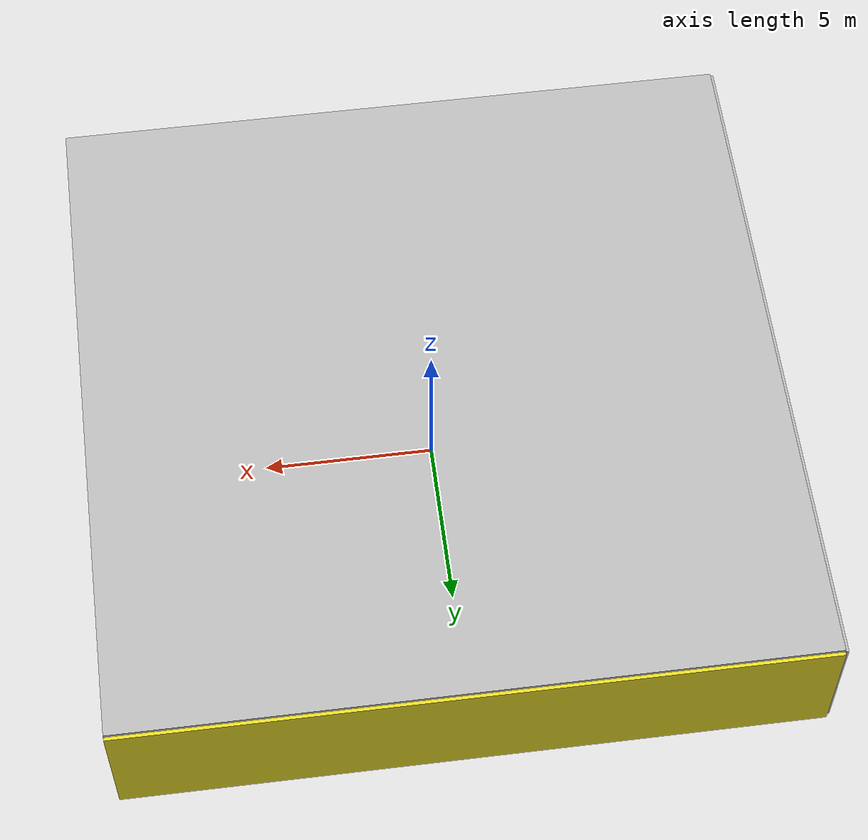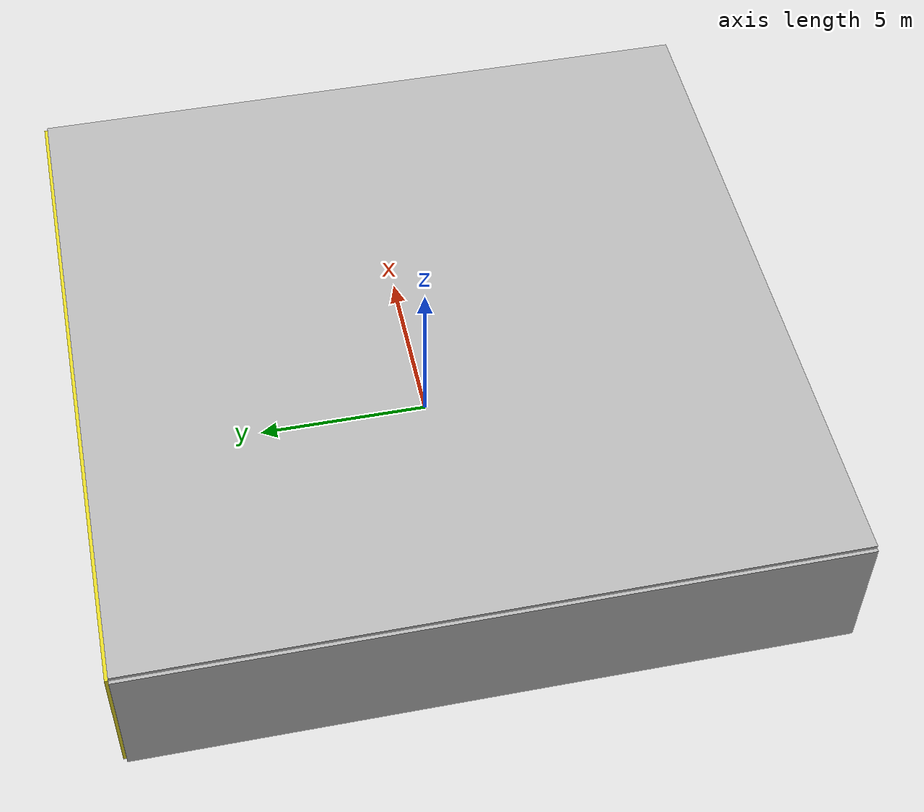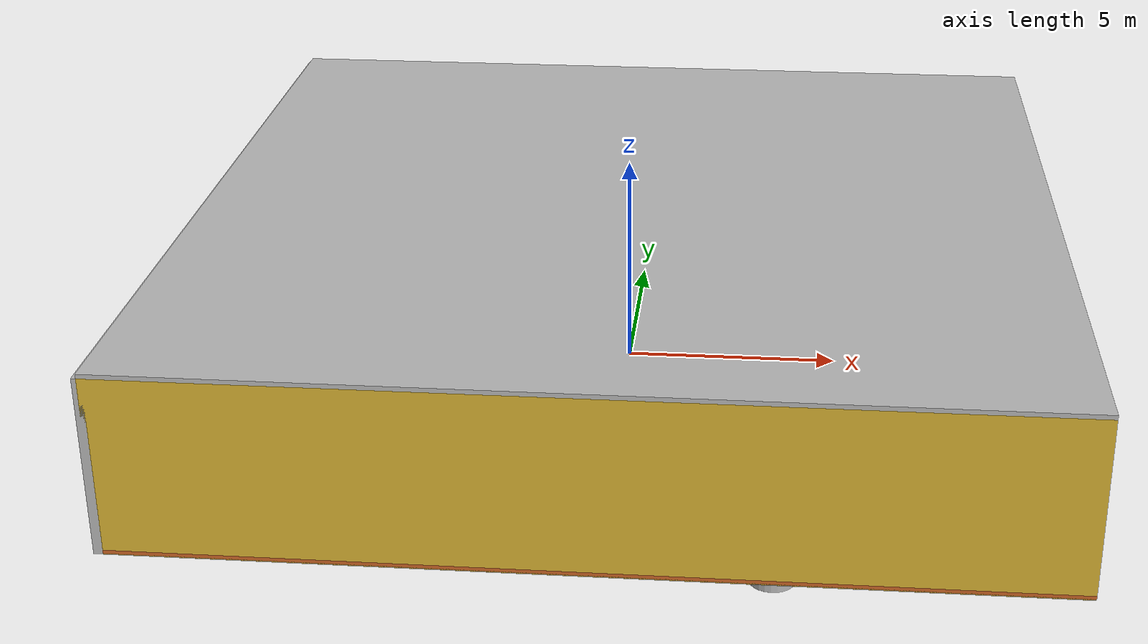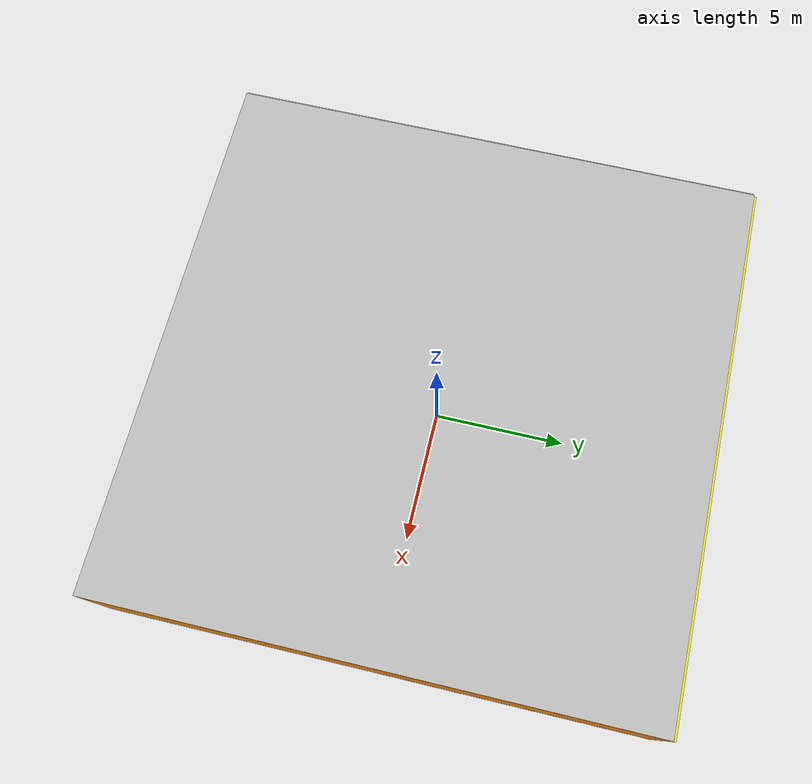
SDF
<sdf version="1.4">
 <world name="default">
  <physics type="ode">
   <max_step_size>0.001</max_step_size>
   <real_time_factor>1</real_time_factor>
   <real_time_update_rate>1000</real_time_update_rate>
   <gravity>0 0 -9.8</gravity>
  </physics>
  <scene><ambient>0.4 0.4 0.4 1</ambient><background>0.7 0.7 0.7 1</background><shadows>1</shadows></scene>
  <model name="Surrounding">
   <static>1</static>
   <link name="Ceiling">
    <collision name="Ceiling_Collision"><geometry><box><size>20 20 0.1</size></box></geometry></collision>
    <visual name="Ceiling_Visual">
     <geometry><box><size>20 20 0.1</size></box></geometry>
     <material>
      <script><uri>file://media/materials/scripts/gazebo.material</uri><name>Gazebo/Pioneer2Body</name></script>
     </material>
    </visual>
    <pose>0 0 4.05 0 0 0</pose>
   </link>
   <link name="Wall_South">
    <collision name="Wall_South_Collision">
     <geometry><box><size>20 0 4</size></box></geometry>
     <pose>0 0 2 0 -0 0</pose>
    </collision>
    <visual name="Wall_South_Visual">
     <pose>0 0 2 0 -0 0</pose>
     <geometry><box><size>20 0 4</size></box></geometry>
     <material>
      <script><uri>file://media/materials/scripts/gazebo.material</uri><name>Gazebo/Gold</name></script>
     </material>
    </visual>
    <velocity_decay><linear>0</linear><angular>0</angular></velocity_decay>
    <pose>0 -10 0 0 -0 0</pose>
   </link>
   <link name="Wall_East">
    <collision name="Wall_21_Collision">
     <geometry><box><size>20 0 4</size></box></geometry>
     <pose>0 0 2 0 -0 0</pose>
    </collision>
    <visual name="Wall_21_Visual">
     <pose>0 0 2 0 -0 0</pose>
     <geometry><box><size>20 0 4</size></box></geometry>
     <material>
      <script><uri>file://media/materials/scripts/gazebo.material</uri><name>Gazebo/Orange</name></script>
     </material>
    </visual>
    <velocity_decay><linear>0</linear><angular>0</angular></velocity_decay>
    <pose>10 0 0 0 -0 1.5708</pose>
   </link>
   <link name="Wall_North">
    <collision name="Wall_22_Collision">
     <geometry><box><size>20 0.2 4</size></box></geometry>
     <pose>0 0 2 0 -0 0</pose>
    </collision>
    <visual name="Wall_22_Visual">
     <pose>0 0 2 0 -0 0</pose>
     <geometry><box><size>20 0.2 4</size></box></geometry>
     <material>
      <script><uri>file://media/materials/scripts/gazebo.material</uri><name>Gazebo/Yellow</name></script>
     </material>
    </visual>
    <velocity_decay><linear>0</linear><angular>0</angular></velocity_decay>
    <pose>0 10 0 0 -0 0</pose>
   </link>
   <link name="Wall_West">
    <collision name="Wall_23_Collision">
     <geometry><box><size>20 0.2 4</size></box></geometry>
     <pose>0 0 2 0 -0 0</pose>
    </collision>
    <visual name="Wall_23_Visual">
     <pose>0 0 2 0 -0 0</pose>
     <geometry><box><size>20 0.2 4</size></box></geometry>
     <material>
      <script><uri>file://media/materials/scripts/gazebo.material</uri><name>Gazebo/Pioneer2Body</name></script>
     </material>
    </visual>
    <velocity_decay><linear>0</linear><angular>0</angular></velocity_decay>
    <pose>-10 0 0 0 0 -1.5708</pose>
   </link>
   <link name="Ground_link">
    <collision name="collision">
     <pose>0 0 .05 0 -0 0</pose>
     <geometry><box><size>20 20 0.1</size></box></geometry>
    </collision>
    <visual name="visual">
     <pose>0 0 .05 0 -0 0</pose>
     <geometry><box><size>20 20 0.1</size></box></geometry>
     <material>
      <script><uri>file://media/materials/scripts/gazebo.material</uri><name>Gazebo/RedTransparent</name></script>
     </material>
    </visual>
   </link>
   <static>1</static>
  </model>
  <spherical_coordinates>
   <surface_model>EARTH_WGS84</surface_model>
   <latitude_deg>0</latitude_deg>
   <longitude_deg>0</longitude_deg>
   <elevation>0</elevation>
   <heading_deg>0</heading_deg>
  </spherical_coordinates>
  <light name="lightball_0" type="diffuse">
   <diffuse>0.8 0.8 0.8 1</diffuse>
   <specular>0.2 0.2 0.2 1</specular>
   <attenuation>
    <range>100</range>
    <constant>0.7</constant>
    <linear>0.01</linear>
    <quadratic>0.001</quadratic>
   </attenuation>
   <direction>-0.5 0.1 -0.9</direction>
   <pose>-2.99332466675 -8.31250666869 1.55012899698 0 0 0</pose>
  </light>
  <light name="lightball_1" type="diffuse">
   <diffuse>0.8 0.8 0.8 1</diffuse>
   <specular>0.2 0.2 0.2 1</specular>
   <attenuation>
    <range>100</range>
    <constant>0.7</constant>
    <linear>0.01</linear>
    <quadratic>0.001</quadratic>
   </attenuation>
   <direction>-0.5 0.1 -0.9</direction>
   <pose>9.39750097528 8.17653001225 3.62196530242 0 0 0</pose>
  </light>
  <light name="lightball_2" type="diffuse">
   <diffuse>0.8 0.8 0.8 1</diffuse>
   <specular>0.2 0.2 0.2 1</specular>
   <attenuation>
    <range>100</range>
    <constant>0.7</constant>
    <linear>0.01</linear>
    <quadratic>0.001</quadratic>
   </attenuation>
   <direction>-0.5 0.1 -0.9</direction>
   <pose>-7.03488971729 4.14751804494 1.88249234541 0 0 0</pose>
  </light>
  <light name="lightball_3" type="diffuse">
   <diffuse>0.8 0.8 0.8 1</diffuse>
   <specular>0.2 0.2 0.2 1</specular>
   <attenuation>
    <range>100</range>
    <constant>0.7</constant>
    <linear>0.01</linear>
    <quadratic>0.001</quadratic>
   </attenuation>
   <direction>-0.5 0.1 -0.9</direction>
   <pose>6.71710032334 -3.49098741026 2.68995646552 0 0 0</pose>
  </light>
  <light name="lightball_4" type="diffuse">
   <diffuse>0.8 0.8 0.8 1</diffuse>
   <specular>0.2 0.2 0.2 1</specular>
   <attenuation>
    <range>100</range>
    <constant>0.7</constant>
    <linear>0.01</linear>
    <quadratic>0.001</quadratic>
   </attenuation>
   <direction>-0.5 0.1 -0.9</direction>
   <pose>6.0198844841 4.44722776164 1.57488080149 0 0 0</pose>
  </light>
  <include>
   <uri>model://construction_cone</uri>
   <pose>-3.91895266036 7.31360187761 0 0 0 2.93286579824</pose>
  </include>
  <include>
   <uri>model://robocup_3Dsim_goal</uri>
   <pose>-0.926021604897 -8.24850042469 0 0 0 1.19601436241</pose>
  </include>
  <include><uri>model://cabinet</uri><pose>-1.84695815618 4.29646266938 0 0 0 2.7026223495</pose></include>
  <include><uri>model://cabinet</uri><pose>1.05324787823 -1.37280551725 0 0 0 2.52779850721</pose></include>
  <include>
   <uri>model://textured_shapes</uri>
   <pose>4.73507457934 -7.94591435618 0 0 0 2.34766289028</pose>
  </include>
 </world>
</sdf>

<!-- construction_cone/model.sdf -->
<sdf version="1.5">
  <model name="Construction Cone">
    <link name="link">
      <collision name="collision">
        <geometry>
          <mesh>
            <scale>10 10 10</scale>
            <uri>file://isr-testbed/construction_cone/meshes/construction_cone.dae</uri>
          </mesh>
        </geometry>
      </collision>
      <visual name="visual">
        <geometry>
          <mesh>
            <scale>10 10 10</scale>
            <uri>file://isr-testbed/construction_cone/meshes/construction_cone.dae</uri>
          </mesh>
        </geometry>
      </visual>
    </link>
  </model>
</sdf>

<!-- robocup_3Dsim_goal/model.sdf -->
<sdf version="1.5">
  <model name="robocup_3d_goal">
    <static>true</static>
    <link name="left_post">
      <pose>0 1.05 0.45 0 0 0</pose>
      <collision name="collision">
        <geometry>
          <cylinder>
            <radius>0.05</radius>
            <length>0.9</length>
          </cylinder>
        </geometry>
      </collision>
      <visual name="visual">
        <geometry>
          <cylinder>
            <radius>0.05</radius>
            <length>0.9</length>
          </cylinder>
        </geometry>
        <material>
          <script>
            <uri>file://media/materials/scripts/gazebo.material</uri>
            <name>Gazebo/ZincYellow</name>
          </script>
        </material>
      </visual>
    </link>
    <link name="left_support_horiz_lower">
      <pose>0.30 1.05 0.01 0 0 0</pose>
      <collision name="collision">
        <geometry>
          <box>
            <size>0.50 0.02 0.02</size>
          </box>
        </geometry>
      </collision>
      <visual name="visual">
        <geometry>
          <box>
            <size>0.50 0.02 0.02</size>
          </box>
        </geometry>
        <material>
          <script>
            <uri>file://media/materials/scripts/gazebo.material</uri>
            <name>Gazebo/White</name>
          </script>
        </material>
      </visual>
    </link>
    <link name="left_support_horiz_upper">
      <pose>0.30 1.05 0.79 0 0 0</pose>
      <collision name="collision">
        <geometry>
          <box>
            <size>0.50 0.02 0.02</size>
          </box>
        </geometry>
      </collision>
      <visual name="visual">
        <geometry>
          <box>
            <size>0.50 0.02 0.02</size>
          </box>
        </geometry>
        <material>
          <script>
            <uri>file://media/materials/scripts/gazebo.material</uri>
            <name>Gazebo/White</name>
          </script>
        </material>
      </visual>
    </link>
    <link name="left_support_vertical">
      <pose>0.56 1.05 0.4 0 1.5708 0</pose>
      <collision name="collision">
        <geometry>
          <box>
            <size>0.80 0.02 0.02</size>
          </box>
        </geometry>
      </collision>
      <visual name="visual">
        <geometry>
          <box>
            <size>0.80 0.02 0.02</size>
          </box>
        </geometry>
        <material>
          <script>
            <uri>file://media/materials/scripts/gazebo.material</uri>
            <name>Gazebo/White</name>
          </script>
        </material>
      </visual>
    </link>
    <link name="right_support_horiz_lower">
      <pose>0.30 -1.05 0.01 0 0 0</pose>
      <collision name="collision">
        <geometry>
          <box>
            <size>0.50 0.02 0.02</size>
          </box>
        </geometry>
      </collision>
      <visual name="visual">
        <geometry>
          <box>
            <size>0.50 0.02 0.02</size>
          </box>
        </geometry>
        <material>
          <script>
            <uri>file://media/materials/scripts/gazebo.material</uri>
            <name>Gazebo/White</name>
          </script>
        </material>
      </visual>
    </link>
    <link name="right_support_horiz_upper">
      <pose>0.30 -1.05 0.79 0 0 0</pose>
      <collision name="collision">
        <geometry>
          <box>
            <size>0.50 0.02 0.02</size>
          </box>
        </geometry>
      </collision>
      <visual name="visual">
        <geometry>
          <box>
            <size>0.50 0.02 0.02</size>
          </box>
        </geometry>
        <material>
          <script>
            <uri>file://media/materials/scripts/gazebo.material</uri>
            <name>Gazebo/White</name>
          </script>
        </material>
      </visual>
    </link>
    <link name="right_support_vertical">
      <pose>0.56 -1.05 0.4 0 1.5708 0</pose>
      <collision name="collision">
        <geometry>
          <box>
            <size>0.80 0.02 0.02</size>
          </box>
        </geometry>
      </collision>
      <visual name="visual">
        <geometry>
          <box>
            <size>0.80 0.02 0.02</size>
          </box>
        </geometry>
        <material>
          <script>
            <uri>file://media/materials/scripts/gazebo.material</uri>
            <name>Gazebo/White</name>
          </script>
        </material>
      </visual>
    </link>
    <link name="center_support_horiz_lower">
      <pose>0.56 0 0.01 0 1.5708 0</pose>
      <collision name="collision">
        <geometry>
          <box>
            <size>0.02 2.08 0.02</size>
          </box>
        </geometry>
      </collision>
      <visual name="visual">
        <geometry>
          <box>
            <size>0.02 2.08 0.02</size>
          </box>
        </geometry>
        <material>
          <script>
            <uri>file://media/materials/scripts/gazebo.material</uri>
            <name>Gazebo/White</name>
          </script>
        </material>
      </visual>
    </link>
    <link name="center_support_horiz_upper">
      <pose>0.56 0 0.79 0 1.5708 0</pose>
      <collision name="collision">
        <geometry>
          <box>
            <size>0.02 2.08 0.02</size>
          </box>
        </geometry>
      </collision>
      <visual name="visual">
        <geometry>
          <box>
            <size>0.02 2.08 0.02</size>
          </box>
        </geometry>
        <material>
          <script>
            <uri>file://media/materials/scripts/gazebo.material</uri>
            <name>Gazebo/White</name>
          </script>
        </material>
      </visual>
    </link>
    <link name="right_post">
      <pose>0 -1.05 0.45 0 0 0</pose>
      <collision name="collision">
        <geometry>
          <cylinder>
            <radius>0.05</radius>
            <length>0.9</length>
          </cylinder>
        </geometry>
      </collision>
      <visual name="visual">
        <geometry>
          <cylinder>
            <radius>0.05</radius>
            <length>0.9</length>
          </cylinder>
        </geometry>
        <material>
          <script>
            <uri>file://media/materials/scripts/gazebo.material</uri>
            <name>Gazebo/ZincYellow</name>
          </script>
        </material>
      </visual>
    </link>
    <link name="crossbar">
      <pose>0 0 0.85 1.57 1.57 0</pose>
      <collision name="collision">
        <geometry>
          <cylinder>
            <radius>0.05</radius>
            <length>2.0</length>
          </cylinder>
        </geometry>
      </collision>
      <visual name="visual">
        <geometry>
          <cylinder>
            <radius>0.05</radius>
            <length>2.0</length>
          </cylinder>
        </geometry>
        <material>
          <script>
            <uri>file://media/materials/scripts/gazebo.material</uri>
            <name>Gazebo/ZincYellow</name>
          </script>
        </material>
      </visual>
    </link>
    <link name="center_net">
      <pose>0.56 0 0.40 0 0 0</pose>
      <collision name="collision">
        <geometry>
          <box>
            <size>0.01 2.1 0.80</size>
          </box>
        </geometry>
      </collision>
      <visual name="visual">
        <geometry>
          <box>
            <size>0.01 2.1 0.80</size>
          </box>
        </geometry>
        <material>
          <script>
            <uri>model://../model_source/models/robocup09_spl_field/materials/scripts/</uri>
            <uri>model://../model_source/models/robocup09_spl_field/materials/textures/</uri>
            <name>RoboCup/Net</name>
          </script>
        </material>
      </visual>
    </link>
    <link name="left_net">
      <pose>0.30 1.05 0.40 0 0 0</pose>
      <collision name="collision">
        <geometry>
          <box>
            <size>0.50 0.01 0.76</size>
          </box>
        </geometry>
      </collision>
      <visual name="visual">
        <geometry>
          <box>
            <size>0.50 0.01 0.76</size>
          </box>
        </geometry>
        <material>
          <script>
            <uri>model://../model_source/models/robocup09_spl_field/materials/scripts/</uri>
            <uri>model://../model_source/models/robocup09_spl_field/materials/textures/</uri>
            <name>RoboCup/Net</name>
          </script>
        </material>
      </visual>
    </link>
    <link name="right_net">
      <pose>0.30 -1.05 0.40 0 0 0</pose>
      <collision name="collision">
        <geometry>
          <box>
            <size>0.50 0.01 0.76</size>
          </box>
        </geometry>
      </collision>
      <visual name="visual">
        <geometry>
          <box>
            <size>0.50 0.01 0.76</size>
          </box>
        </geometry>
        <material>
          <script>
            <uri>model://../model_source/models/robocup09_spl_field/materials/scripts/</uri>
            <uri>model://../model_source/models/robocup09_spl_field/materials/textures/</uri>
            <name>RoboCup/Net</name>
          </script>
        </material>
      </visual>
    </link>
  </model>
</sdf>

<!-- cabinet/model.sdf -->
<sdf version="1.5">
  <model name="cabinet">
    <static>true</static>
    <link name="cabinet_bottom_plate">
      <inertial>
        <pose>0 0 -1 0 0 0</pose>
        <inertia>
          <ixx>2.050000</ixx>
          <ixy>0</ixy>
          <ixz>0</ixz>
          <iyy>2.050000</iyy>
          <iyz>0</iyz>
          <izz>2.050000</izz>
        </inertia>
        <mass>25.000000</mass>
      </inertial>
      <collision name="cabinet_bottom_plate_geom">
        <pose>0 0 0.010000 0 0 0</pose>
        <geometry>
          <box>
            <size>0.450000 0.450000 0.020000</size>
          </box>
        </geometry>
      </collision>
      <visual name="cabinet_bottom_plate_geom_visual">
        <pose>0 0 0.010000 0 0 0</pose>
        <geometry>
          <box>
            <size>0.450000 0.450000 0.020000</size>
          </box>
        </geometry>
        <material>
          <script>
            <uri>model://media/materials/scripts/gazebo.material</uri>
            <name>Gazebo/Wood</name>
          </script>
        </material>
      </visual>
      <collision name="cabinet_bottom_plate_geom_cabinet_back_plate">
        <pose>0.235000 0 0.510000 0 0 0</pose>
        <geometry>
          <box>
            <size>0.020000 0.450000 1.020000</size>
          </box>
        </geometry>
      </collision>
      <visual name="cabinet_bottom_plate_geom_cabinet_back_plate_visual">
        <pose>0.235000 0 0.510000 0 0 0</pose>
        <geometry>
          <box>
            <size>0.020000 0.450000 1.020000</size>
          </box>
        </geometry>
        <material>
          <script>
            <uri>model://media/materials/scripts/gazebo.material</uri>
            <name>Gazebo/Wood</name>
          </script>
        </material>
      </visual>
      <collision name="cabinet_bottom_plate_geom_cabinet_left_plate">
        <pose>0 0.235000 0.510000 0 0 0</pose>
        <geometry>
          <box>
            <size>0.450000 0.020000 1.020000</size>
          </box>
        </geometry>
      </collision>
      <visual name="cabinet_bottom_plate_geom_cabinet_left_plate_visual">
        <pose>0 0.235000 0.510000 0 0 0</pose>
        <geometry>
          <box>
            <size>0.450000 0.020000 1.020000</size>
          </box>
        </geometry>
        <material>
          <script>
            <uri>model://media/materials/scripts/gazebo.material</uri>
            <name>Gazebo/Wood</name>
          </script>
        </material>
      </visual>
      <collision name="cabinet_bottom_plate_geom_cabinet_middle_plate">
        <pose>0 0 0.510000 0 0 0</pose>
        <geometry>
          <box>
            <size>0.450000 0.450000 0.020000</size>
          </box>
        </geometry>
      </collision>
      <visual name="cabinet_bottom_plate_geom_cabinet_middle_plate_visual">
        <pose>0 0 0.510000 0 0 0</pose>
        <geometry>
          <box>
            <size>0.450000 0.450000 0.020000</size>
          </box>
        </geometry>
        <material>
          <script>
            <uri>model://media/materials/scripts/gazebo.material</uri>
            <name>Gazebo/Wood</name>
          </script>
        </material>
      </visual>
      <collision name="cabinet_bottom_plate_geom_cabinet_right_plate">
        <pose>0 -0.235000 0.510000 0 0 0</pose>
        <geometry>
          <box>
            <size>0.450000 0.020000 1.020000</size>
          </box>
        </geometry>
      </collision>
      <visual name="cabinet_bottom_plate_geom_cabinet_right_plate_visual">
        <pose>0 -0.235000 0.510000 0 0 0</pose>
        <geometry>
          <box>
            <size>0.450000 0.020000 1.020000</size>
          </box>
        </geometry>
        <material>
          <script>
            <uri>model://media/materials/scripts/gazebo.material</uri>
            <name>Gazebo/Wood</name>
          </script>
        </material>
      </visual>
      <collision name="cabinet_bottom_plate_geom_cabinet_top_plate">
        <pose>0 0 1.010000 0 0 0</pose>
        <geometry>
          <box>
            <size>0.450000 0.450000 0.020000</size>
          </box>
        </geometry>
      </collision>
      <visual name="cabinet_bottom_plate_geom_cabinet_top_plate_visual">
        <pose>0 0 1.010000 0 0 0</pose>
        <geometry>
          <box>
            <size>0.450000 0.450000 0.020000</size>
          </box>
        </geometry>
        <material>
          <script>
            <uri>model://media/materials/scripts/gazebo.material</uri>
            <name>Gazebo/Wood</name>
          </script>
        </material>
      </visual>
    </link>
  </model>
</sdf>

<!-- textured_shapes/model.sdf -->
<sdf version="1.6">
  <model name="textured_shapes">
    <pose>0 0 0.5 0 0 0</pose>
    <link name="box">
      <pose>0 -1.5 0 0 0 0</pose>
      <collision name="collision">
        <geometry>
          <box>
            <size>1 1 1</size>
          </box>
        </geometry>
      </collision>
      <visual name="visual">
        <geometry>
          <box>
            <size>1 1 1</size>
          </box>
        </geometry>
        <material>
          <script>
            <uri>model://../model_source/models/textured_shapes/materials/scripts</uri>
            <uri>model://../model_source/models/textured_shapes/materials/textures</uri>
            <name>TexturedShape/Squares</name>
          </script>
        </material>
      </visual>
    </link>
    <link name="sphere">
      <collision name="collision">
        <geometry>
          <sphere>
            <radius>0.5</radius>
          </sphere>
        </geometry>
      </collision>
      <visual name="visual">
        <geometry>
          <sphere>
            <radius>0.5</radius>
          </sphere>
        </geometry>
        <material>
          <script>
            <uri>model://../model_source/models/textured_shapes/materials/scripts</uri>
            <uri>model://../model_source/models/textured_shapes/materials/textures</uri>
            <name>TexturedShape/Squares</name>
          </script>
        </material>
      </visual>
    </link>
    <link name="cylinder">
      <pose>0 1.5 0 0 0 0</pose>
      <collision name="collision">
        <geometry>
          <cylinder>
            <radius>0.5</radius>
            <length>1</length>
          </cylinder>
        </geometry>
      </collision>
      <visual name="visual">
        <geometry>
          <cylinder>
            <radius>0.5</radius>
            <length>1</length>
          </cylinder>
        </geometry>
        <material>
          <script>
            <uri>model://../model_source/models/textured_shapes/materials/scripts</uri>
            <uri>model://../model_source/models/textured_shapes/materials/textures</uri>
            <name>TexturedShape/Squares</name>
          </script>
        </material>
      </visual>
    </link>
  </model>
</sdf>
